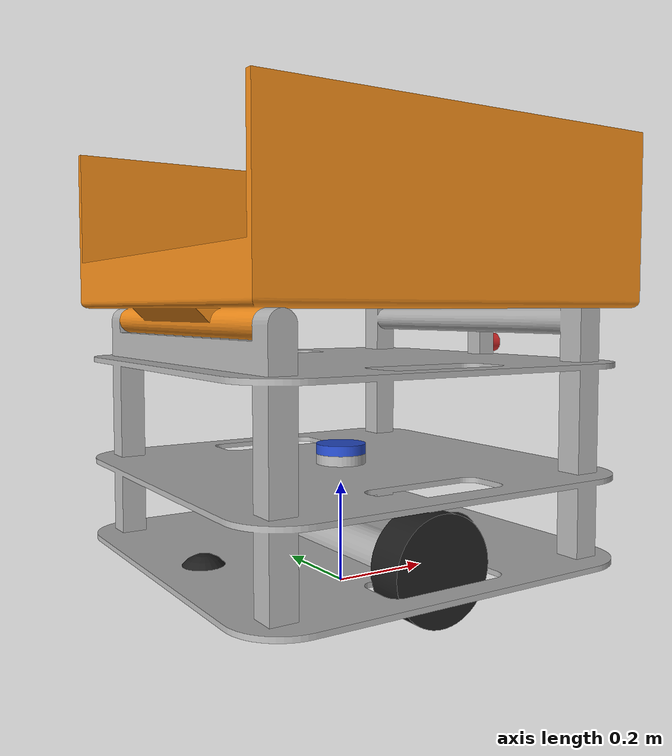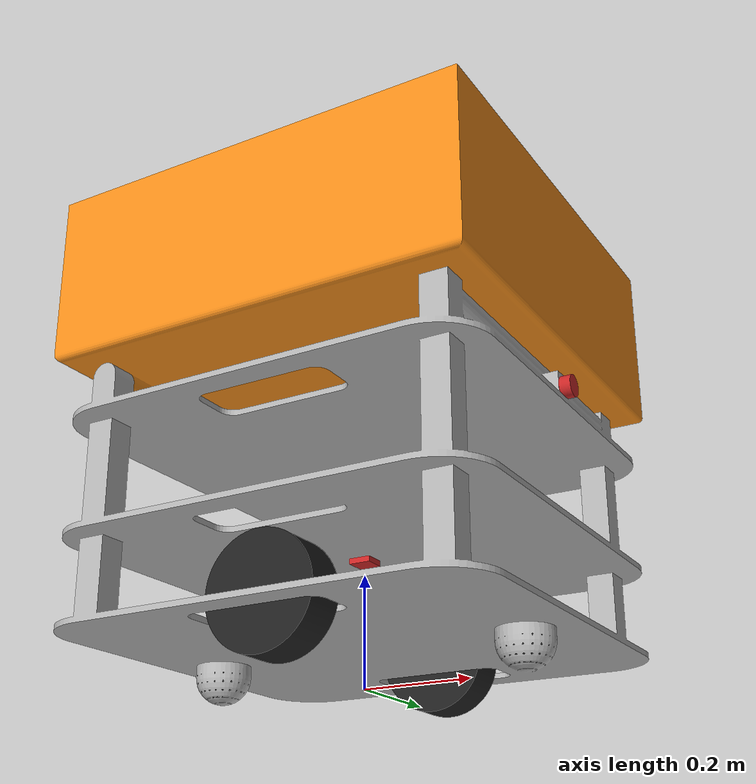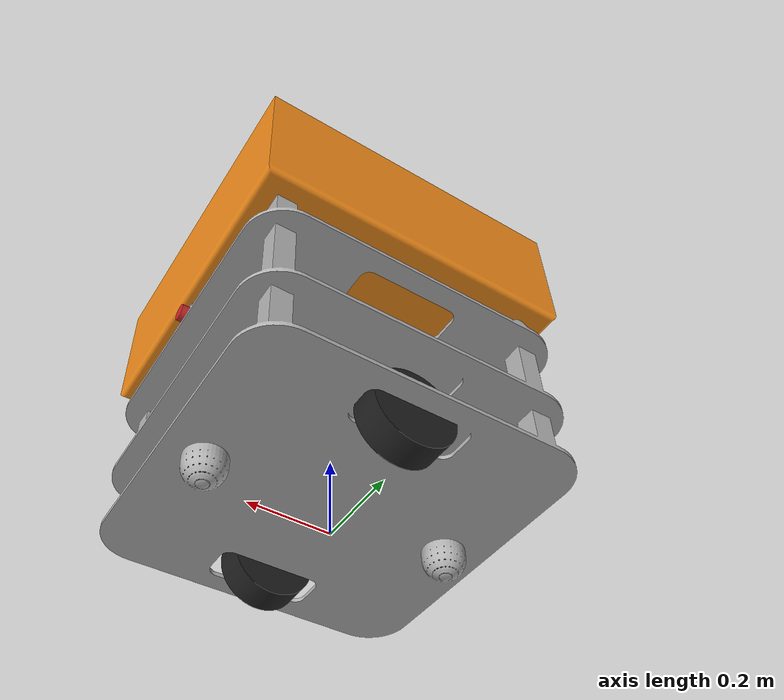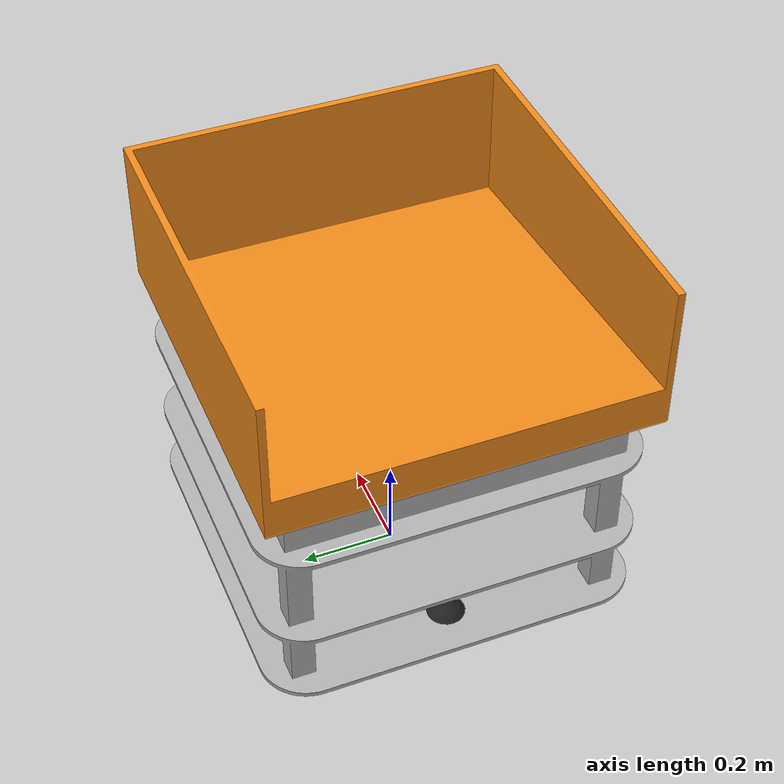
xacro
<?xml version="1.0" ?>
<robot xmlns:xacro="http://www.ros.org/wiki/xacro">

  <xacro:include filename="inertial_macros.xacro"/>
  <xacro:include filename="$(find factory_amr_description)/urdf/materials.xacro" />
  <xacro:include filename="$(find factory_amr_description)/urdf/factory_amr.trans" />
  <xacro:include filename="$(find factory_amr_description)/urdf/factory_amr.gazebo" />
  <link name="base_link">
    <inertial>
      <origin xyz="-0.002396599951463409 2.104073385822183e-15 0.2688636212913025" rpy="0 0 0"/>
      <mass value="29.324129559371645"/>
      <inertia ixx="2.322166" iyy="2.720165" izz="3.470128" ixy="0.0" iyz="0.0" ixz="-0.006447"/>
    </inertial>
    <visual>
      <origin xyz="0 0 0" rpy="0 0 0"/>
      <geometry>
        <mesh filename="file://$(find factory_amr_description)/meshes/base_link.stl" scale="0.001 0.001 0.001"/>
      </geometry>
      <material name="silver"/>
    </visual>
    <collision>
      <origin xyz="0 0 0" rpy="0 0 0"/>
      <geometry>
        <mesh filename="file://$(find factory_amr_description)/meshes/base_link.stl" scale="0.001 0.001 0.001"/>
      </geometry>
    </collision>
  </link>
  <gazebo reference="base_link">
    <material>Gazebo/White</material>
  </gazebo>

  <link name="right_wheel_link">
    <inertial>
      <origin xyz="-1.5713222806367798e-17 -0.03750000000000003 0.0" rpy="0 0 0"/>
      <mass value="2.1531676424929196"/>
      <inertia ixx="0.006279" iyy="0.010596" izz="0.006279" ixy="0.0" iyz="-0.0" ixz="-0.0"/>
    </inertial>
    <visual>
      <origin xyz="-0.0 -0.1 -0.25" rpy="-${pi/2} 0 0"/>
      <geometry>
        <mesh filename="file://$(find factory_amr_description)/meshes/right_wheel_1.stl" scale="0.001 0.001 0.001" rpy="0 0 0"/>
      </geometry>
      <material name="black"/>
    </visual>
    <collision>
      <origin xyz="-0.0 -0.1 -0.25" rpy="-${pi/2} 0 0"/>
      <geometry>
        <mesh filename="file://$(find factory_amr_description)/meshes/right_wheel_1.stl" scale="0.001 0.001 0.001"/>
      </geometry>
    </collision>

  </link>
  <gazebo reference="right_wheel_link">
    <material>Gazebo/Black</material>
  </gazebo>

  <link name="left_wheel_link">
    <inertial>
      <origin xyz="0.0 0.03749999999999998 1.3877787807814457e-17" rpy="0 0 0"/>
      <mass value="2.153167642492919"/>
      <inertia ixx="0.006279" iyy="0.010596" izz="0.006279" ixy="0.0" iyz="0.0" ixz="0.0"/>
    </inertial>
    <visual>
      <origin xyz="0 0.1 -0.25" rpy="${pi/2} 0 0"/>
      <geometry>
        <mesh filename="file://$(find factory_amr_description)/meshes/left_wheel_1.stl" scale="0.001 0.001 0.001" rpy="0 0 0"/>
      </geometry>
      <material name="black"/>
    </visual>
    <collision>
      <origin xyz="0 0.1 -0.25" rpy="${pi/2} 0 0"/>
      <geometry>
        <mesh filename="file://$(find factory_amr_description)/meshes/left_wheel_1.stl" scale="0.001 0.001 0.001"/>
      </geometry>
    </collision>
  </link>
  <gazebo reference="left_wheel_link">
    <material>Gazebo/Black</material>
  </gazebo>

  <link name="luggage_link">
    <inertial>
      <origin xyz="0.2776968707983327 -0.2999999999999999 0.08670656285317513" rpy="0 0 0"/>
      <mass value="128.17276920688812"/>
      <inertia ixx="9.105387" iyy="8.394601" izz="16.079343" ixy="0.0" iyz="-0.0" ixz="-0.544919"/>
    </inertial>
    <visual>
      <origin xyz="0.325 -0.3 -0.525" rpy="0 0 0"/>
      <geometry>
        <mesh filename="file://$(find factory_amr_description)/meshes/revolute_1.stl" scale="0.001 0.001 0.001"/>
      </geometry>
      <material name="orange"/>
    </visual>
    <collision>
      <origin xyz="0.325 -0.3 -0.525" rpy="0 0 0"/>
      <geometry>
        <mesh filename="file://$(find factory_amr_description)/meshes/revolute_1.stl" scale="0.001 0.001 0.001"/>
      </geometry>
    </collision>
  </link>
  <gazebo reference="luggage_link">
    <material>Gazebo/Orange</material>
  </gazebo>

  <link name="imu_link">
    <inertial>
      <origin xyz="0.0 0.0 -0.0050000000000000044" rpy="0 0 0"/>
      <mass value="0.1256"/>
      <inertia ixx="1.8e-05" iyy="1.8e-05" izz="3.3e-05" ixy="0.0" iyz="0.0" ixz="0.0"/>
    </inertial>
    <visual>
      <origin xyz="-0.0 -0.0 -0.23" rpy="0 0 0"/>
      <geometry>
        <mesh filename="file://$(find factory_amr_description)/meshes/imu_1.stl" scale="0.001 0.001 0.001"/>
      </geometry>
      <material name="red"/>
    </visual>
    <collision>
      <origin xyz="-0.0 -0.0 -0.23" rpy="0 0 0"/>
      <geometry>
        <mesh filename="file://$(find factory_amr_description)/meshes/imu_1.stl" scale="0.001 0.001 0.001"/>
      </geometry>
    </collision>
  </link>
  <gazebo reference="imu_link">
    <material>Gazebo/Red</material>
  </gazebo>

  <link name="camera_link">
    <inertial>
      <origin xyz="0.010000000000000064 0.0 0.0" rpy="0 0 0"/>
      <mass value="0.19729201864543888"/>
      <inertia ixx="3.9e-05" iyy="2.6e-05" izz="2.6e-05" ixy="0.0" iyz="-0.0" ixz="0.0"/>
    </inertial>
    <visual>
      <origin xyz="-0.39 -0.0 -0.475" rpy="0 0 0"/>
      <geometry>
        <mesh filename="file://$(find factory_amr_description)/meshes/camera_1.stl" scale="0.001 0.001 0.001"/>
      </geometry>
      <material name="red"/>
    </visual>
    <collision>
      <origin xyz="-0.39 -0.0 -0.475" rpy="0 0 0"/>
      <geometry>
        <mesh filename="file://$(find factory_amr_description)/meshes/camera_1.stl" scale="0.001 0.001 0.001"/>
      </geometry>
    </collision>
  </link>

  <!-- caster wheels -->
  <joint name="front_caster" type="fixed">
    <parent link="base_link"/>
    <child link="front_caster_link"/>
    <origin xyz="0.3 0 0.05"/>
  </joint>
  <link name="front_caster_link">
    <visual>
      <geometry>
        <sphere radius="0.05"/>
      </geometry>
      <material name="black"/>
    </visual>
    <collision>
      <geometry>
        <sphere radius="0.05"/>
      </geometry>
    </collision>
    <xacro:inertial_sphere mass="0.1" radius="0.05">
      <origin xyz="0 0 0" rpy="0 0 0"/>
    </xacro:inertial_sphere>
  </link>
  <gazebo reference="front_caster">
    <material>Gazebo/Black</material>
    <mu1 value="0.001"/>
    <mu2 value="0.001"/>
  </gazebo>

  <joint name="back_caster" type="fixed">
    <parent link="base_link"/>
    <child link="back_caster_link"/>
    <origin xyz="-0.3 0 0.05"/>
  </joint>
  <link name="back_caster_link">
    <visual>
      <geometry>
        <sphere radius="0.05"/>
      </geometry>
      <material name="black"/>
    </visual>
    <collision>
      <geometry>
        <sphere radius="0.05"/>
      </geometry>
    </collision>
    <xacro:inertial_sphere mass="0.1" radius="0.05">
      <origin xyz="0 0 0" rpy="0 0 0"/>
    </xacro:inertial_sphere>
  </link>
  <gazebo reference="back_caster">
    <material>Gazebo/Black</material>
    <mu1 value="0.001"/>
    <mu2 value="0.001"/>
  </gazebo>

  <!-- joints -->

  <joint name="right_wheel_joint" type="continuous">
    <origin xyz="0.0 -0.25 0.1" rpy="${pi/2} 0 0"/>
    <parent link="base_link"/>
    <child link="right_wheel_link"/>
    <axis xyz="0.0 0.0 -1.0"/>
  </joint>

  <joint name="left_wheel_joint" type="continuous">
    <origin xyz="0.0 0.25 0.1" rpy="-${pi/2} 0 0"/>
    <parent link="base_link"/>
    <child link="left_wheel_link"/>
    <axis xyz="0.0 0.0 1.0"/>
  </joint>

  <joint name="luggage_joint" type="revolute">
    <origin xyz="-0.325 0.3 0.525" rpy="0 0 0"/>
    <parent link="base_link"/>
    <child link="luggage_link"/>
    <axis xyz="0.0 -1.0 0.0"/>
    <limit upper="0.785398" lower="0.0" effort="100" velocity="100"/>
  </joint>

  <joint name="imu_joint" type="fixed">
    <origin xyz="0.0 0.0 0.23" rpy="0 0 0"/>
    <parent link="base_link"/>
    <child link="imu_link"/>
  </joint>

  <joint name="camera_joint" type="fixed">
    <origin xyz="0.39 0.0 0.475" rpy="0 0 0"/>
    <parent link="base_link"/>
    <child link="camera_link"/>
  </joint>

  <joint name="camera_optical_joint" type="fixed">
    <origin xyz="0.0 0.0 0.0" rpy="${-pi/2} 0 ${-pi/2}"/>
    <parent link="camera_link"/>
    <child link="camera_optical_link"/>
  </joint>

  <link name="camera_optical_link" type="fixed"></link>

  <joint name="laser_joint" type="fixed">
      <origin xyz="0.0 0.0 0.26" rpy="0 0 0"/>
      <parent link="base_link"/>
      <child link="laser_frame"/>
  </joint>

  <link name="laser_frame">
      <inertial>
          <origin xyz="-7.237528875152536e-18 -1.447505775030507e-17 0.010000000000000009" rpy="0 0 0"/>
          <mass value="1.2330751165339937"/>
          <inertia ixx="0.000812" iyy="0.000812" izz="0.001541" ixy="-0.0" iyz="0.0" ixz="0.0"/>
      </inertial>
      <visual>
          <origin xyz="-0.0 -0.0 -0.26" rpy="0 0 0"/>
          <geometry>
              <mesh filename="file://$(find factory_amr_description)/meshes/lidar_1.stl" scale="0.001 0.001 0.001"/>
          </geometry>
          <material name="blue"/>
      </visual>
      <collision>
          <origin xyz="-0.0 -0.0 -0.26" rpy="0 0 0"/>
          <geometry>
              <mesh filename="file://$(find factory_amr_description)/meshes/lidar_1.stl" scale="0.001 0.001 0.001"/>
          </geometry>
      </collision>
  </link>

  <gazebo reference="laser_frame">
      <material>Gazebo/Blue</material>

      <sensor name="laser" type="ray">
          <pose> 0 0 0 0 0 0 </pose>
          <visualize>true</visualize>
          <update_rate>10</update_rate>
          <ray>
              <scan>
              <horizontal>
                  <samples>360</samples>
                  <resolution>1</resolution>
                  <min_angle>-3.14</min_angle>
                  <max_angle>3.14</max_angle>
              </horizontal>
              </scan>
              <range>
              <min>0.6</min>
              <max>12</max>
              </range>
          </ray>
          <plugin name="laser_controller" filename="libgazebo_ros_ray_sensor.so">
              <ros>
                  <argument>~/out:=scan</argument>
              </ros>
              <output_type>sensor_msgs/LaserScan</output_type>
              <frame_name>laser_frame</frame_name>
          </plugin>
      </sensor>
  </gazebo>

  <gazebo reference="camera_link">
    <material>Gazebo/Red</material>
    <sensor name="camera" type="camera">
      <pose> 0 0 0 0 0 0 </pose>
      <visualize>true</visualize>
      <update_rate>10</update_rate>
      <camera>
        <horizontal_fov>1.089</horizontal_fov>
        <image>
          <format>B8G8R8</format>
          <width>640</width>
          <height>480</height>
        </image>
        <clip>
          <near>0.05</near>
          <far>8.0</far>
        </clip>
      </camera>
      <plugin name="camera_controller" filename="libgazebo_ros_camera.so">
        <frame_name>camera_optical_link</frame_name>
        <min_depth>0.1</min_depth>
        <max_depth>100.0</max_depth>
      </plugin>
    </sensor>
  </gazebo>

</robot>

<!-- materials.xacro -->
<robot name="factory_amr" xmlns:xacro="http://www.ros.org/wiki/xacro" >

<material name="silver">
  <color rgba="0.700 0.700 0.700 1.000"/>
</material>

</robot>

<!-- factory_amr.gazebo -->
<robot name="factory_amr" xmlns:xacro="http://www.ros.org/wiki/xacro" >

<xacro:property name="body_color" value="Gazebo/Silver" />

<gazebo>
  <plugin name="control" filename="libgazebo_ros_control.so"/>
</gazebo>
<gazebo reference="base_link">
  <material>${body_color}</material>
  <mu1>0.2</mu1>
  <mu2>0.2</mu2>
  <self_collide>true</self_collide>
  <gravity>true</gravity>
</gazebo>

<gazebo reference="left_wheel_1">
  <material>${body_color}</material>
  <mu1>0.2</mu1>
  <mu2>0.2</mu2>
  <self_collide>true</self_collide>
</gazebo>

<gazebo reference="right_wheel_1">
  <material>${body_color}</material>
  <mu1>0.2</mu1>
  <mu2>0.2</mu2>
  <self_collide>true</self_collide>
</gazebo>

<gazebo reference="revolute_1">
  <material>${body_color}</material>
  <mu1>0.2</mu1>
  <mu2>0.2</mu2>
  <self_collide>true</self_collide>
</gazebo>

<gazebo reference="lidar_1">
  <material>${body_color}</material>
  <mu1>0.2</mu1>
  <mu2>0.2</mu2>
  <self_collide>true</self_collide>
</gazebo>

<gazebo reference="camera_1">
  <material>${body_color}</material>
  <mu1>0.2</mu1>
  <mu2>0.2</mu2>
  <self_collide>true</self_collide>
</gazebo>

<gazebo reference="imu_1">
  <material>${body_color}</material>
  <mu1>0.2</mu1>
  <mu2>0.2</mu2>
  <self_collide>true</self_collide>
</gazebo>

</robot>
